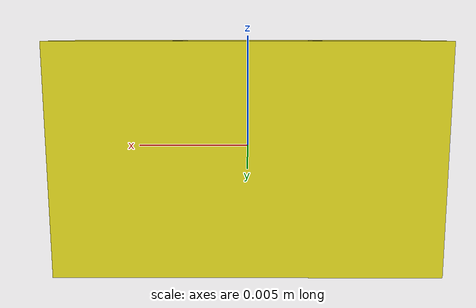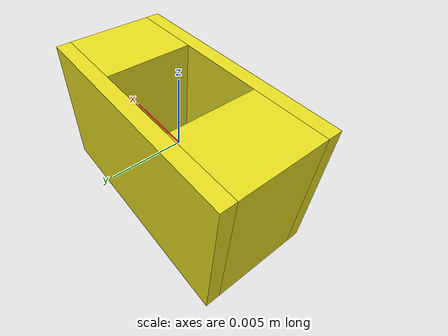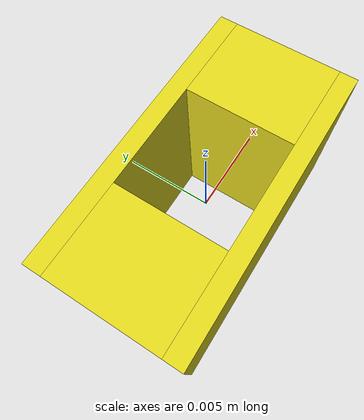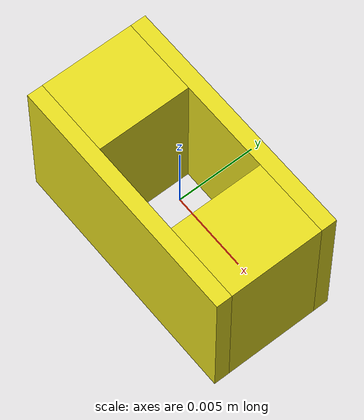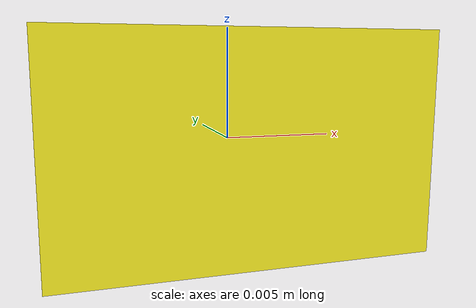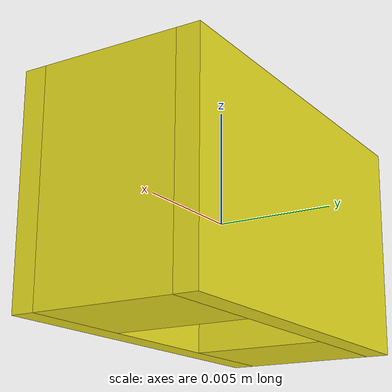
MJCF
<mujoco model="lego_technic_holder_32064">
  <compiler angle="radian" autolimits="true"/>

  <statistic center="0 0 0" extent="0.08"/>

  <visual>
    <headlight diffuse="0.8 0.8 0.8" ambient="0.4 0.4 0.4" specular="0.1 0.1 0.1"/>
    <rgba haze="0.15 0.2 0.25 1"/>
    <global azimuth="135" elevation="-25"/>
  </visual>

  <default>
    <default class="lego_technic">
      <site group="5" size="0.0015" rgba="0 0.3 1 1"/>
      <default class="visual">
        <geom contype="0" conaffinity="0" group="0" rgba="0.9 0.86 0.12 1"/>
      </default>
      <default class="collision">
        <geom contype="1" conaffinity="1" group="3" rgba="0.85 0.85 0.8 1"
          condim="3" friction="0.8 0.005 0.0001" solref="0.004 1"
          solimp="0.95 0.99 0.001"/>
      </default>
    </default>
  </default>

  <worldbody>
    <light pos="0 -0.05 0.12" dir="0 0 -1" directional="false"/>
    <body name="holder_32064" childclass="lego_technic">
      <geom name="holder_32064_left_visual" class="visual" type="box"
        pos="-0.0055 0 0" size="0.0025 0.003 0.0048"/>
      <geom name="holder_32064_right_visual" class="visual" type="box"
        pos="0.0055 0 0" size="0.0025 0.003 0.0048"/>
      <geom name="holder_32064_front_visual" class="visual" type="box"
        pos="0 -0.0035 0" size="0.008 0.0005 0.0048"/>
      <geom name="holder_32064_back_visual" class="visual" type="box"
        pos="0 0.0035 0" size="0.008 0.0005 0.0048"/>
      <geom name="holder_32064_left_collision" class="collision" type="box"
        pos="-0.0055 0 0" size="0.0025 0.003 0.0048"/>
      <geom name="holder_32064_right_collision" class="collision" type="box"
        pos="0.0055 0 0" size="0.0025 0.003 0.0048"/>
      <geom name="holder_32064_front_collision" class="collision" type="box"
        pos="0 -0.0035 0" size="0.008 0.0005 0.0048"/>
      <geom name="holder_32064_back_collision" class="collision" type="box"
        pos="0 0.0035 0" size="0.008 0.0005 0.0048"/>
      <site name="hole_center" pos="0 0 0" size="0.002"/>
      <site name="hole_axis_end" pos="0 0 0.016"/>
    </body>
  </worldbody>
</mujoco>
